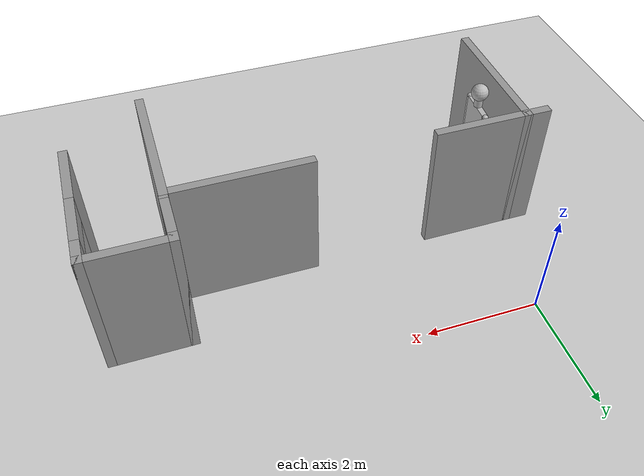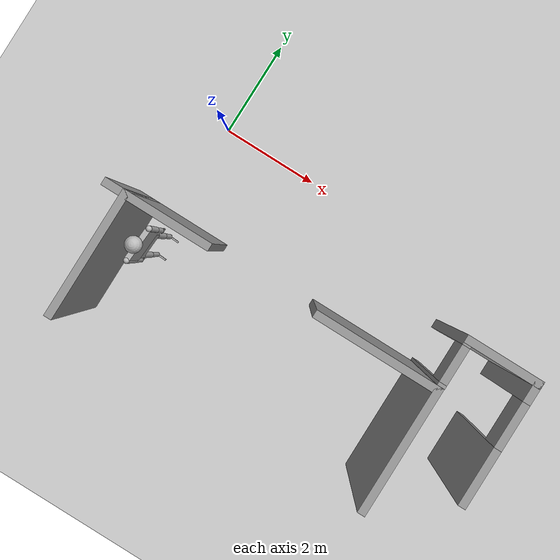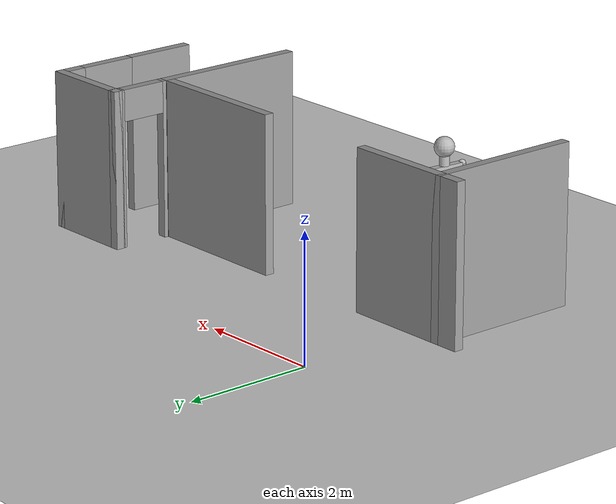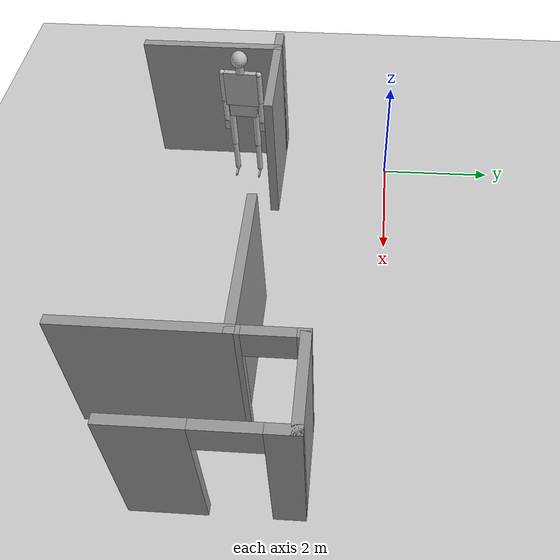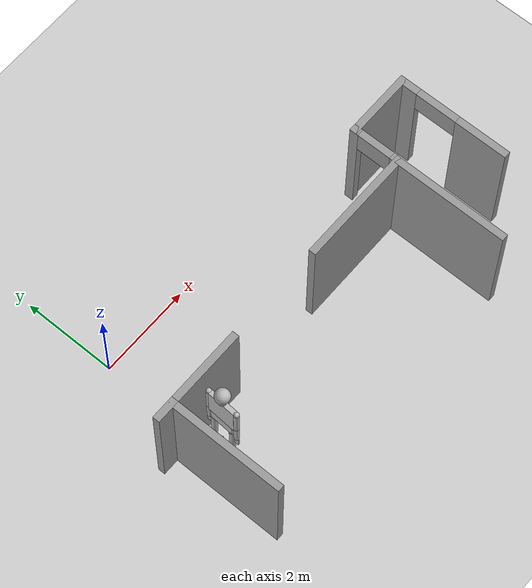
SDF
<sdf version="1.6">
 <world name="default">
  <model name="ground_plane">
   <static>1</static>
   <link name="link">
    <collision name="collision">
     <geometry><plane><normal>0 0 1</normal><size>100 100</size></plane></geometry>
     <surface><friction><ode><mu>100</mu><mu2>50</mu2></ode></friction></surface>
    </collision>
    <visual name="visual">
     <cast_shadows>0</cast_shadows>
     <geometry><plane><normal>0 0 1</normal><size>100 100</size></plane></geometry>
     <material>
      <script><uri>file://media/materials/scripts/gazebo.material</uri><name>Gazebo/Grey</name></script>
     </material>
    </visual>
   </link>
  </model>
  <model name="cma_parede_t">
   <pose>0.159955 -3.24016 0 0 -0 0</pose>
   <link name="Wall_15">
    <collision name="Wall_15_Collision">
     <geometry><box><size>2.5 0.15 2.5</size></box></geometry>
     <pose>0 0 1.25 0 -0 0</pose>
    </collision>
    <visual name="Wall_15_Visual">
     <pose>0 0 1.25 0 -0 0</pose>
     <geometry><box><size>2.5 0.15 2.5</size></box></geometry>
     <material>
      <script><uri>file://media/materials/scripts/gazebo.material</uri><name>Gazebo/Grey</name></script>
      <ambient>1 1 1 1</ambient>
     </material>
    </visual>
    <pose>-0.625 0 0 0 -0 1.5708</pose>
   </link>
   <link name="Wall_16">
    <collision name="Wall_16_Collision">
     <geometry><box><size>0.5 0.15 2.5</size></box></geometry>
     <pose>0 0 1.25 0 -0 0</pose>
    </collision>
    <visual name="Wall_16_Visual">
     <pose>0 0 1.25 0 -0 0</pose>
     <geometry><box><size>0.5 0.15 2.5</size></box></geometry>
     <material>
      <script><uri>file://media/materials/scripts/gazebo.material</uri><name>Gazebo/Grey</name></script>
      <ambient>1 1 1 1</ambient>
     </material>
    </visual>
    <pose>-0.8 1.175 0 0 -0 3.14159</pose>
   </link>
   <link name="Wall_18">
    <collision name="Wall_18_Collision">
     <geometry><box><size>1.75 0.15 2.5</size></box></geometry>
     <pose>0 0 1.25 0 -0 0</pose>
    </collision>
    <visual name="Wall_18_Visual">
     <pose>0 0 1.25 0 -0 0</pose>
     <geometry><box><size>1.75 0.15 2.5</size></box></geometry>
     <material>
      <script><uri>file://media/materials/scripts/gazebo.material</uri><name>Gazebo/Grey</name></script>
      <ambient>1 1 1 1</ambient>
     </material>
    </visual>
    <pose>0.175 1.175 0 0 -0 0</pose>
   </link>
   <static>1</static>
  </model>
  <model name="cma_L2">
   <pose>4.51683 -3.24587 0 0 -0 0</pose>
   <link name="Wall_10">
    <collision name="Wall_10_Collision">
     <geometry><box><size>2.5 0.15 2.5</size></box></geometry>
     <pose>0 0 1.25 0 -0 0</pose>
    </collision>
    <visual name="Wall_10_Visual">
     <pose>0 0 1.25 0 -0 0</pose>
     <geometry><box><size>2.5 0.15 2.5</size></box></geometry>
     <material>
      <script><uri>file://media/materials/scripts/gazebo.material</uri><name>Gazebo/Grey</name></script>
      <ambient>1 1 1 1</ambient>
     </material>
    </visual>
    <pose>1.175 0 0 0 0 -1.5708</pose>
   </link>
   <link name="Wall_9">
    <collision name="Wall_9_Collision">
     <geometry><box><size>2.5 0.15 2.5</size></box></geometry>
     <pose>0 0 1.25 0 -0 0</pose>
    </collision>
    <visual name="Wall_9_Visual">
     <pose>0 0 1.25 0 -0 0</pose>
     <geometry><box><size>2.5 0.15 2.5</size></box></geometry>
     <material>
      <script><uri>file://media/materials/scripts/gazebo.material</uri><name>Gazebo/Grey</name></script>
      <ambient>1 1 1 1</ambient>
     </material>
    </visual>
    <pose>0 1.175 0 0 -0 0</pose>
   </link>
   <static>1</static>
  </model>
  <model name="cma_L3">
   <pose>6.37221 -2.26022 0 0 -0 0</pose>
   <link name="Wall_12">
    <pose>-0.675 0.75 0 0 -0 1.5708</pose>
    <visual name="Wall_12_Visual_0">
     <pose>-0.46 0 1.25 0 -0 0</pose>
     <geometry><box><size>0.08 0.15 2.5</size></box></geometry>
     <material>
      <script><uri>file://media/materials/scripts/gazebo.material</uri><name>Gazebo/Grey</name></script>
      <ambient>1 1 1 1</ambient>
     </material>
    </visual>
    <collision name="Wall_12_Collision_0">
     <geometry><box><size>0.08 0.15 2.5</size></box></geometry>
     <pose>-0.46 0 1.25 0 -0 0</pose>
    </collision>
    <visual name="Wall_12_Visual_1">
     <pose>0.405 0 1.25 0 -0 0</pose>
     <geometry><box><size>0.19 0.15 2.5</size></box></geometry>
     <material>
      <script><uri>file://media/materials/scripts/gazebo.material</uri><name>Gazebo/Grey</name></script>
      <ambient>1 1 1 1</ambient>
     </material>
    </visual>
    <collision name="Wall_12_Collision_1">
     <geometry><box><size>0.19 0.15 2.5</size></box></geometry>
     <pose>0.405 0 1.25 0 -0 0</pose>
    </collision>
    <visual name="Wall_12_Visual_2">
     <pose>-0.055 0 2.25 0 -0 0</pose>
     <geometry><box><size>0.73 0.15 0.5</size></box></geometry>
     <material>
      <script><uri>file://media/materials/scripts/gazebo.material</uri><name>Gazebo/Grey</name></script>
      <ambient>1 1 1 1</ambient>
     </material>
    </visual>
    <collision name="Wall_12_Collision_2">
     <geometry><box><size>0.73 0.15 0.5</size></box></geometry>
     <pose>-0.055 0 2.25 0 -0 0</pose>
    </collision>
   </link>
   <link name="Wall_13">
    <collision name="Wall_13_Collision">
     <geometry><box><size>1.5 0.15 2.5</size></box></geometry>
     <pose>0 0 1.25 0 -0 0</pose>
    </collision>
    <visual name="Wall_13_Visual">
     <pose>0 0 1.25 0 -0 0</pose>
     <geometry><box><size>1.5 0.15 2.5</size></box></geometry>
     <material>
      <script><uri>file://media/materials/scripts/gazebo.material</uri><name>Gazebo/Grey</name></script>
      <ambient>1 1 1 1</ambient>
     </material>
    </visual>
    <pose>0 1.175 0 0 -0 0</pose>
   </link>
   <link name="Wall_14">
    <pose>0.675 0 0 0 0 -1.5708</pose>
    <visual name="Wall_14_Visual_0">
     <pose>-1.0175 0 1.25 0 -0 0</pose>
     <geometry><box><size>0.465 0.15 2.5</size></box></geometry>
     <material>
      <script><uri>file://media/materials/scripts/gazebo.material</uri><name>Gazebo/Grey</name></script>
      <ambient>1 1 1 1</ambient>
     </material>
    </visual>
    <collision name="Wall_14_Collision_0">
     <geometry><box><size>0.465 0.15 2.5</size></box></geometry>
     <pose>-1.0175 0 1.25 0 -0 0</pose>
    </collision>
    <visual name="Wall_14_Visual_1">
     <pose>0.6825 0 1.25 0 -0 0</pose>
     <geometry><box><size>1.135 0.15 2.5</size></box></geometry>
     <material>
      <script><uri>file://media/materials/scripts/gazebo.material</uri><name>Gazebo/Grey</name></script>
      <ambient>1 1 1 1</ambient>
     </material>
    </visual>
    <collision name="Wall_14_Collision_1">
     <geometry><box><size>1.135 0.15 2.5</size></box></geometry>
     <pose>0.6825 0 1.25 0 -0 0</pose>
    </collision>
    <visual name="Wall_14_Visual_2">
     <pose>-0.335 0 2.25 0 -0 0</pose>
     <geometry><box><size>0.9 0.15 0.5</size></box></geometry>
     <material>
      <script><uri>file://media/materials/scripts/gazebo.material</uri><name>Gazebo/Grey</name></script>
      <ambient>1 1 1 1</ambient>
     </material>
    </visual>
    <collision name="Wall_14_Collision_2">
     <geometry><box><size>0.9 0.15 0.5</size></box></geometry>
     <pose>-0.335 0 2.25 0 -0 0</pose>
    </collision>
   </link>
   <static>1</static>
  </model>
  <model name="ragdoll">
   <pose>0.125636 -2.6822 1.39993 5e-05 0.003649 -0.05673</pose>
   <link name="hip">
    <inertial>
     <inertia><ixx>0.1</ixx><ixy>0</ixy><ixz>0</ixz><iyy>0.1</iyy><iyz>0</iyz><izz>0.1</izz></inertia>
     <mass>10</mass>
    </inertial>
    <collision name="hip_geom">
     <pose>0 0 0.125 0 -0 0</pose>
     <geometry><box><size>0.1 0.5 0.25</size></box></geometry>
     <surface>
      <friction><ode><mu>-1</mu><mu2>-1</mu2><fdir1>0 0 0</fdir1><slip1>0</slip1><slip2>0</slip2></ode></friction>
      <bounce><restitution_coefficient>0</restitution_coefficient><threshold>100000</threshold></bounce>
      <contact>
       <ode>
        <soft_cfm>0</soft_cfm>
        <soft_erp>0.2</soft_erp>
        <kp>1e+12</kp>
        <kd>1</kd>
        <max_vel>0</max_vel>
        <min_depth>0.001</min_depth>
       </ode>
      </contact>
     </surface>
    </collision>
    <visual name="hip_geom_visual">
     <pose>0 0 0.125 0 -0 0</pose>
     <geometry><box><size>0.1 0.5 0.25</size></box></geometry>
    </visual>
    <gravity>0</gravity>
   </link>
   <link name="l_thigh_pan">
    <pose>0 0.22 0 0 -0 0</pose>
    <inertial>
     <inertia><ixx>0.01</ixx><ixy>0</ixy><ixz>0</ixz><iyy>0.01</iyy><iyz>0</iyz><izz>0.01</izz></inertia>
     <mass>1</mass>
    </inertial>
    <collision name="l_thigh_pan_geom">
     <pose>0 0 -0.03 0 -0 0</pose>
     <geometry><sphere><radius>0.06</radius></sphere></geometry>
     <surface>
      <friction><ode><mu>-1</mu><mu2>-1</mu2><fdir1>0 0 0</fdir1><slip1>0</slip1><slip2>0</slip2></ode></friction>
      <bounce><restitution_coefficient>0</restitution_coefficient><threshold>100000</threshold></bounce>
      <contact>
       <ode>
        <soft_cfm>0</soft_cfm>
        <soft_erp>0.2</soft_erp>
        <kp>1e+12</kp>
        <kd>1</kd>
        <max_vel>0</max_vel>
        <min_depth>0.001</min_depth>
       </ode>
      </contact>
     </surface>
    </collision>
    <visual name="l_thigh_pan_geom_visual">
     <pose>0 0 -0.03 0 -0 0</pose>
     <geometry><sphere><radius>0.06</radius></sphere></geometry>
    </visual>
    <gravity>0</gravity>
   </link>
   <link name="l_thigh_lift">
    <pose>0 0.22 0 0 -0 0</pose>
    <inertial>
     <inertia><ixx>0.05</ixx><ixy>0</ixy><ixz>0</ixz><iyy>0.05</iyy><iyz>0</iyz><izz>0.05</izz></inertia>
     <mass>5</mass>
    </inertial>
    <collision name="l_thigh_lift_geom">
     <pose>0 0 -0.35 0 -0 0</pose>
     <geometry><cylinder><radius>0.06</radius><length>0.7</length></cylinder></geometry>
     <surface>
      <friction><ode><mu>-1</mu><mu2>-1</mu2><fdir1>0 0 0</fdir1><slip1>0</slip1><slip2>0</slip2></ode></friction>
      <bounce><restitution_coefficient>0</restitution_coefficient><threshold>100000</threshold></bounce>
      <contact>
       <ode>
        <soft_cfm>0</soft_cfm>
        <soft_erp>0.2</soft_erp>
        <kp>1e+12</kp>
        <kd>1</kd>
        <max_vel>0</max_vel>
        <min_depth>0.001</min_depth>
       </ode>
      </contact>
     </surface>
    </collision>
    <visual name="l_thigh_lift_geom_visual">
     <pose>0 0 -0.35 0 -0 0</pose>
     <geometry><cylinder><radius>0.06</radius><length>0.7</length></cylinder></geometry>
    </visual>
    <gravity>0</gravity>
   </link>
   <link name="l_calf">
    <pose>0 0.22 -0.7 0 -0 0</pose>
    <inertial>
     <inertia><ixx>0.02</ixx><ixy>0</ixy><ixz>0</ixz><iyy>0.02</iyy><iyz>0</iyz><izz>0.02</izz></inertia>
     <mass>2</mass>
    </inertial>
    <collision name="l_calf_geom">
     <pose>0 0 -0.3 0 -0 0</pose>
     <geometry><cylinder><radius>0.05</radius><length>0.6</length></cylinder></geometry>
     <surface>
      <friction><ode><mu>-1</mu><mu2>-1</mu2><fdir1>0 0 0</fdir1><slip1>0</slip1><slip2>0</slip2></ode></friction>
      <bounce><restitution_coefficient>0</restitution_coefficient><threshold>100000</threshold></bounce>
      <contact>
       <ode>
        <soft_cfm>0</soft_cfm>
        <soft_erp>0.2</soft_erp>
        <kp>1e+12</kp>
        <kd>1</kd>
        <max_vel>0</max_vel>
        <min_depth>0.001</min_depth>
       </ode>
      </contact>
     </surface>
    </collision>
    <visual name="l_calf_geom_visual">
     <pose>0 0 -0.3 0 -0 0</pose>
     <geometry><cylinder><radius>0.05</radius><length>0.6</length></cylinder></geometry>
    </visual>
    <gravity>0</gravity>
   </link>
   <link name="l_ankle">
    <pose>0 0.22 -1.325 0 -0 0</pose>
    <inertial>
     <inertia><ixx>0.01</ixx><ixy>0</ixy><ixz>0</ixz><iyy>0.01</iyy><iyz>0</iyz><izz>0.01</izz></inertia>
     <mass>1</mass>
    </inertial>
    <collision name="l_ankle_geom">
     <geometry><sphere><radius>0.05</radius></sphere></geometry>
     <surface>
      <friction><ode><mu>-1</mu><mu2>-1</mu2><fdir1>0 0 0</fdir1><slip1>0</slip1><slip2>0</slip2></ode></friction>
      <bounce><restitution_coefficient>0</restitution_coefficient><threshold>100000</threshold></bounce>
      <contact>
       <ode>
        <soft_cfm>0</soft_cfm>
        <soft_erp>0.2</soft_erp>
        <kp>1e+12</kp>
        <kd>1</kd>
        <max_vel>0</max_vel>
        <min_depth>0.001</min_depth>
       </ode>
      </contact>
     </surface>
    </collision>
    <visual name="l_ankle_geom_visual"><geometry><sphere><radius>0.05</radius></sphere></geometry></visual>
    <gravity>0</gravity>
   </link>
   <link name="l_foot">
    <pose>0 0.22 -1.35 0 -0 0</pose>
    <inertial>
     <pose>0.1 0 0 0 -0 0</pose>
     <inertia><ixx>0.01</ixx><ixy>0</ixy><ixz>0</ixz><iyy>0.01</iyy><iyz>0</iyz><izz>0.01</izz></inertia>
     <mass>1</mass>
    </inertial>
    <collision name="l_foot_geom">
     <pose>0.1 0 -0.025 0 -0 0</pose>
     <geometry><box><size>0.2 0.03 0.05</size></box></geometry>
     <surface>
      <friction><ode><mu>-1</mu><mu2>-1</mu2><fdir1>0 0 0</fdir1><slip1>0</slip1><slip2>0</slip2></ode></friction>
      <bounce><restitution_coefficient>0</restitution_coefficient><threshold>100000</threshold></bounce>
      <contact>
       <ode>
        <soft_cfm>0</soft_cfm>
        <soft_erp>0.2</soft_erp>
        <kp>1e+12</kp>
        <kd>1</kd>
        <max_vel>0</max_vel>
        <min_depth>0.001</min_depth>
       </ode>
      </contact>
     </surface>
    </collision>
    <visual name="l_foot_geom_visual">
     <pose>0.1 0 -0.025 0 -0 0</pose>
     <geometry><box><size>0.2 0.03 0.05</size></box></geometry>
    </visual>
   </link>
   <link name="r_thigh_pan">
    <pose>0 -0.22 0 0 -0 0</pose>
    <inertial>
     <inertia><ixx>0.01</ixx><ixy>0</ixy><ixz>0</ixz><iyy>0.01</iyy><iyz>0</iyz><izz>0.01</izz></inertia>
     <mass>1</mass>
    </inertial>
    <collision name="r_thigh_pan_geom">
     <pose>0 0 -0.03 0 -0 0</pose>
     <geometry><sphere><radius>0.06</radius></sphere></geometry>
     <surface>
      <friction><ode><mu>-1</mu><mu2>-1</mu2><fdir1>0 0 0</fdir1><slip1>0</slip1><slip2>0</slip2></ode></friction>
      <bounce><restitution_coefficient>0</restitution_coefficient><threshold>100000</threshold></bounce>
      <contact>
       <ode>
        <soft_cfm>0</soft_cfm>
        <soft_erp>0.2</soft_erp>
        <kp>1e+12</kp>
        <kd>1</kd>
        <max_vel>0</max_vel>
        <min_depth>0.001</min_depth>
       </ode>
      </contact>
     </surface>
    </collision>
    <visual name="r_thigh_pan_geom_visual">
     <pose>0 0 -0.03 0 -0 0</pose>
     <geometry><sphere><radius>0.06</radius></sphere></geometry>
    </visual>
    <gravity>0</gravity>
   </link>
   <link name="r_thigh_lift">
    <pose>0 -0.22 0 0 -0 0</pose>
    <inertial>
     <inertia><ixx>0.05</ixx><ixy>0</ixy><ixz>0</ixz><iyy>0.05</iyy><iyz>0</iyz><izz>0.05</izz></inertia>
     <mass>5</mass>
    </inertial>
    <collision name="r_thigh_lift_geom">
     <pose>0 0 -0.35 0 -0 0</pose>
     <geometry><cylinder><radius>0.06</radius><length>0.7</length></cylinder></geometry>
     <surface>
      <friction><ode><mu>-1</mu><mu2>-1</mu2><fdir1>0 0 0</fdir1><slip1>0</slip1><slip2>0</slip2></ode></friction>
      <bounce><restitution_coefficient>0</restitution_coefficient><threshold>100000</threshold></bounce>
      <contact>
       <ode>
        <soft_cfm>0</soft_cfm>
        <soft_erp>0.2</soft_erp>
        <kp>1e+12</kp>
        <kd>1</kd>
        <max_vel>0</max_vel>
        <min_depth>0.001</min_depth>
       </ode>
      </contact>
     </surface>
    </collision>
    <visual name="r_thigh_lift_geom_visual">
     <pose>0 0 -0.35 0 -0 0</pose>
     <geometry><cylinder><radius>0.06</radius><length>0.7</length></cylinder></geometry>
    </visual>
    <gravity>0</gravity>
   </link>
   <link name="r_calf">
    <pose>0 -0.22 -0.7 0 -0 0</pose>
    <inertial>
     <inertia><ixx>0.02</ixx><ixy>0</ixy><ixz>0</ixz><iyy>0.02</iyy><iyz>0</iyz><izz>0.02</izz></inertia>
     <mass>2</mass>
    </inertial>
    <collision name="r_calf_geom">
     <pose>0 0 -0.3 0 -0 0</pose>
     <geometry><cylinder><radius>0.05</radius><length>0.6</length></cylinder></geometry>
     <surface>
      <friction><ode><mu>-1</mu><mu2>-1</mu2><fdir1>0 0 0</fdir1><slip1>0</slip1><slip2>0</slip2></ode></friction>
      <bounce><restitution_coefficient>0</restitution_coefficient><threshold>100000</threshold></bounce>
      <contact>
       <ode>
        <soft_cfm>0</soft_cfm>
        <soft_erp>0.2</soft_erp>
        <kp>1e+12</kp>
        <kd>1</kd>
        <max_vel>0</max_vel>
        <min_depth>0.001</min_depth>
       </ode>
      </contact>
     </surface>
    </collision>
    <visual name="r_calf_geom_visual">
     <pose>0 0 -0.3 0 -0 0</pose>
     <geometry><cylinder><radius>0.05</radius><length>0.6</length></cylinder></geometry>
    </visual>
    <gravity>0</gravity>
   </link>
   <link name="r_ankle">
    <pose>0 -0.22 -1.325 0 -0 0</pose>
    <inertial>
     <inertia><ixx>0.01</ixx><ixy>0</ixy><ixz>0</ixz><iyy>0.01</iyy><iyz>0</iyz><izz>0.01</izz></inertia>
     <mass>1</mass>
    </inertial>
    <collision name="r_ankle_geom">
     <geometry><sphere><radius>0.05</radius></sphere></geometry>
     <surface>
      <friction><ode><mu>-1</mu><mu2>-1</mu2><fdir1>0 0 0</fdir1><slip1>0</slip1><slip2>0</slip2></ode></friction>
      <bounce><restitution_coefficient>0</restitution_coefficient><threshold>100000</threshold></bounce>
      <contact>
       <ode>
        <soft_cfm>0</soft_cfm>
        <soft_erp>0.2</soft_erp>
        <kp>1e+12</kp>
        <kd>1</kd>
        <max_vel>0</max_vel>
        <min_depth>0.001</min_depth>
       </ode>
      </contact>
     </surface>
    </collision>
    <visual name="r_ankle_geom_visual"><geometry><sphere><radius>0.05</radius></sphere></geometry></visual>
    <gravity>0</gravity>
   </link>
   <link name="r_foot">
    <pose>0 -0.22 -1.35 0 -0 0</pose>
    <inertial>
     <pose>0.1 0 0 0 -0 0</pose>
     <inertia><ixx>0.01</ixx><ixy>0</ixy><ixz>0</ixz><iyy>0.01</iyy><iyz>0</iyz><izz>0.01</izz></inertia>
     <mass>1</mass>
    </inertial>
    <collision name="r_foot_geom">
     <pose>0.1 0 -0.025 0 -0 0</pose>
     <geometry><box><size>0.2 0.03 0.05</size></box></geometry>
     <surface>
      <friction><ode><mu>-1</mu><mu2>-1</mu2><fdir1>0 0 0</fdir1><slip1>0</slip1><slip2>0</slip2></ode></friction>
      <bounce><restitution_coefficient>0</restitution_coefficient><threshold>100000</threshold></bounce>
      <contact>
       <ode>
        <soft_cfm>0</soft_cfm>
        <soft_erp>0.2</soft_erp>
        <kp>1e+12</kp>
        <kd>1</kd>
        <max_vel>0</max_vel>
        <min_depth>0.001</min_depth>
       </ode>
      </contact>
     </surface>
    </collision>
    <visual name="r_foot_geom_visual">
     <pose>0.1 0 -0.025 0 -0 0</pose>
     <geometry><box><size>0.2 0.03 0.05</size></box></geometry>
    </visual>
   </link>
   <link name="torso">
    <pose>0 0 0.25 0 -0 0</pose>
    <inertial>
     <inertia><ixx>0.3</ixx><ixy>0</ixy><ixz>0</ixz><iyy>0.3</iyy><iyz>0</iyz><izz>0.3</izz></inertia>
     <mass>30</mass>
    </inertial>
    <collision name="torso_geom">
     <pose>0 0 0.35 0 -0 0</pose>
     <geometry><box><size>0.1 0.6 0.7</size></box></geometry>
     <surface>
      <friction><ode><mu>-1</mu><mu2>-1</mu2><fdir1>0 0 0</fdir1><slip1>0</slip1><slip2>0</slip2></ode></friction>
      <bounce><restitution_coefficient>0</restitution_coefficient><threshold>100000</threshold></bounce>
      <contact>
       <ode>
        <soft_cfm>0</soft_cfm>
        <soft_erp>0.2</soft_erp>
        <kp>1e+12</kp>
        <kd>1</kd>
        <max_vel>0</max_vel>
        <min_depth>0.001</min_depth>
       </ode>
      </contact>
     </surface>
    </collision>
    <visual name="torso_geom_visual">
     <pose>0 0 0.35 0 -0 0</pose>
     <geometry><box><size>0.1 0.6 0.7</size></box></geometry>
    </visual>
    <gravity>0</gravity>
   </link>
   <link name="l_shoulder">
    <pose>0 0.3275 0.9225 0 -0 0</pose>
    <inertial>
     <inertia><ixx>0.01</ixx><ixy>0</ixy><ixz>0</ixz><iyy>0.01</iyy><iyz>0</iyz><izz>0.01</izz></inertia>
     <mass>1</mass>
    </inertial>
    <collision name="l_shoulder_geom">
     <geometry><sphere><radius>0.055</radius></sphere></geometry>
     <surface>
      <friction><ode><mu>-1</mu><mu2>-1</mu2><fdir1>0 0 0</fdir1><slip1>0</slip1><slip2>0</slip2></ode></friction>
      <bounce><restitution_coefficient>0</restitution_coefficient><threshold>100000</threshold></bounce>
      <contact>
       <ode>
        <soft_cfm>0</soft_cfm>
        <soft_erp>0.2</soft_erp>
        <kp>1e+12</kp>
        <kd>1</kd>
        <max_vel>0</max_vel>
        <min_depth>0.001</min_depth>
       </ode>
      </contact>
     </surface>
    </collision>
    <visual name="l_shoulder_geom_visual"><geometry><sphere><radius>0.055</radius></sphere></geometry></visual>
    <gravity>0</gravity>
   </link>
   <link name="l_upper_arm">
    <pose>0 0.3275 0.9225 0 -0 0</pose>
    <inertial>
     <inertia><ixx>0.02</ixx><ixy>0</ixy><ixz>0</ixz><iyy>0.02</iyy><iyz>0</iyz><izz>0.02</izz></inertia>
     <mass>2</mass>
    </inertial>
    <collision name="l_upper_arm_geom">
     <pose>0 0 -0.3 0 -0 0</pose>
     <geometry><cylinder><radius>0.055</radius><length>0.6</length></cylinder></geometry>
     <surface>
      <friction><ode><mu>-1</mu><mu2>-1</mu2><fdir1>0 0 0</fdir1><slip1>0</slip1><slip2>0</slip2></ode></friction>
      <bounce><restitution_coefficient>0</restitution_coefficient><threshold>100000</threshold></bounce>
      <contact>
       <ode>
        <soft_cfm>0</soft_cfm>
        <soft_erp>0.2</soft_erp>
        <kp>1e+12</kp>
        <kd>1</kd>
        <max_vel>0</max_vel>
        <min_depth>0.001</min_depth>
       </ode>
      </contact>
     </surface>
    </collision>
    <visual name="l_upper_arm_geom_visual">
     <pose>0 0 -0.3 0 -0 0</pose>
     <geometry><cylinder><radius>0.055</radius><length>0.6</length></cylinder></geometry>
    </visual>
    <gravity>0</gravity>
   </link>
   <link name="l_forearm">
    <pose>0 0.3275 0.3225 0 -0 0</pose>
    <inertial>
     <inertia><ixx>0.01</ixx><ixy>0</ixy><ixz>0</ixz><iyy>0.01</iyy><iyz>0</iyz><izz>0.01</izz></inertia>
     <mass>1</mass>
    </inertial>
    <collision name="l_forearm_geom">
     <pose>0 0 -0.225 0 -0 0</pose>
     <geometry><cylinder><radius>0.05</radius><length>0.45</length></cylinder></geometry>
     <surface>
      <friction><ode><mu>-1</mu><mu2>-1</mu2><fdir1>0 0 0</fdir1><slip1>0</slip1><slip2>0</slip2></ode></friction>
      <bounce><restitution_coefficient>0</restitution_coefficient><threshold>100000</threshold></bounce>
      <contact>
       <ode>
        <soft_cfm>0</soft_cfm>
        <soft_erp>0.2</soft_erp>
        <kp>1e+12</kp>
        <kd>1</kd>
        <max_vel>0</max_vel>
        <min_depth>0.001</min_depth>
       </ode>
      </contact>
     </surface>
    </collision>
    <visual name="l_forearm_geom_visual">
     <pose>0 0 -0.225 0 -0 0</pose>
     <geometry><cylinder><radius>0.05</radius><length>0.45</length></cylinder></geometry>
    </visual>
    <gravity>0</gravity>
   </link>
   <link name="l_wrist">
    <pose>0 0.3275 -0.1425 0 -0 0</pose>
    <inertial>
     <inertia><ixx>0.01</ixx><ixy>0</ixy><ixz>0</ixz><iyy>0.01</iyy><iyz>0</iyz><izz>0.01</izz></inertia>
     <mass>1</mass>
    </inertial>
    <collision name="l_wrist_geom">
     <geometry><sphere><radius>0.03</radius></sphere></geometry>
     <surface>
      <friction><ode><mu>-1</mu><mu2>-1</mu2><fdir1>0 0 0</fdir1><slip1>0</slip1><slip2>0</slip2></ode></friction>
      <bounce><restitution_coefficient>0</restitution_coefficient><threshold>100000</threshold></bounce>
      <contact>
       <ode>
        <soft_cfm>0</soft_cfm>
        <soft_erp>0.2</soft_erp>
        <kp>1e+12</kp>
        <kd>1</kd>
        <max_vel>0</max_vel>
        <min_depth>0.001</min_depth>
       </ode>
      </contact>
     </surface>
    </collision>
    <visual name="l_wrist_geom_visual"><geometry><sphere><radius>0.03</radius></sphere></geometry></visual>
    <gravity>0</gravity>
   </link>
   <link name="l_hand">
    <pose>0 0.3275 -0.1575 0 -0 0</pose>
    <inertial>
     <inertia><ixx>0.01</ixx><ixy>0</ixy><ixz>0</ixz><iyy>0.01</iyy><iyz>0</iyz><izz>0.01</izz></inertia>
     <mass>1</mass>
    </inertial>
    <collision name="l_hand_geom">
     <pose>0 0 -0.1 0 -0 0</pose>
     <geometry><box><size>0.03 0.1 0.2</size></box></geometry>
     <surface>
      <friction><ode><mu>-1</mu><mu2>-1</mu2><fdir1>0 0 0</fdir1><slip1>0</slip1><slip2>0</slip2></ode></friction>
      <bounce><restitution_coefficient>0</restitution_coefficient><threshold>100000</threshold></bounce>
      <contact>
       <ode>
        <soft_cfm>0</soft_cfm>
        <soft_erp>0.2</soft_erp>
        <kp>1e+12</kp>
        <kd>1</kd>
        <max_vel>0</max_vel>
        <min_depth>0.001</min_depth>
       </ode>
      </contact>
     </surface>
    </collision>
    <visual name="l_hand_geom_visual">
     <pose>0 0 -0.1 0 -0 0</pose>
     <geometry><box><size>0.03 0.1 0.2</size></box></geometry>
    </visual>
    <gravity>0</gravity>
   </link>
   <link name="neck">
    <pose>0 0 0.95 0 -0 0</pose>
    <inertial>
     <inertia><ixx>0.01</ixx><ixy>0</ixy><ixz>0</ixz><iyy>0.01</iyy><iyz>0</iyz><izz>0.01</izz></inertia>
     <mass>1</mass>
    </inertial>
    <collision name="neck_geom">
     <pose>0 0 0.1 0 -0 0</pose>
     <geometry><cylinder><radius>0.075</radius><length>0.2</length></cylinder></geometry>
     <surface>
      <friction><ode><mu>-1</mu><mu2>-1</mu2><fdir1>0 0 0</fdir1><slip1>0</slip1><slip2>0</slip2></ode></friction>
      <bounce><restitution_coefficient>0</restitution_coefficient><threshold>100000</threshold></bounce>
      <contact>
       <ode>
        <soft_cfm>0</soft_cfm>
        <soft_erp>0.2</soft_erp>
        <kp>1e+12</kp>
        <kd>1</kd>
        <max_vel>0</max_vel>
        <min_depth>0.001</min_depth>
       </ode>
      </contact>
     </surface>
    </collision>
    <visual name="neck_geom_visual">
     <pose>0 0 0.1 0 -0 0</pose>
     <geometry><cylinder><radius>0.075</radius><length>0.2</length></cylinder></geometry>
    </visual>
    <gravity>0</gravity>
   </link>
   <link name="head">
    <pose>0 0 1.225 0 -0 0</pose>
    <inertial>
     <inertia><ixx>0.1</ixx><ixy>0</ixy><ixz>0</ixz><iyy>0.1</iyy><iyz>0</iyz><izz>0.1</izz></inertia>
     <mass>10</mass>
    </inertial>
    <collision name="head_geom">
     <geometry><sphere><radius>0.15</radius></sphere></geometry>
     <surface>
      <friction><ode><mu>-1</mu><mu2>-1</mu2><fdir1>0 0 0</fdir1><slip1>0</slip1><slip2>0</slip2></ode></friction>
      <bounce><restitution_coefficient>0</restitution_coefficient><threshold>100000</threshold></bounce>
      <contact>
       <ode>
        <soft_cfm>0</soft_cfm>
        <soft_erp>0.2</soft_erp>
        <kp>1e+12</kp>
        <kd>1</kd>
        <max_vel>0</max_vel>
        <min_depth>0.001</min_depth>
       </ode>
      </contact>
     </surface>
    </collision>
    <visual name="head_geom_visual"><geometry><sphere><radius>0.15</radius></sphere></geometry></visual>
    <gravity>0</gravity>
   </link>
   <link name="r_shoulder">
    <pose>0 -0.3275 0.9225 0 -0 0</pose>
    <inertial>
     <inertia><ixx>0.01</ixx><ixy>0</ixy><ixz>0</ixz><iyy>0.01</iyy><iyz>0</iyz><izz>0.01</izz></inertia>
     <mass>1</mass>
    </inertial>
    <collision name="r_shoulder_geom">
     <geometry><sphere><radius>0.055</radius></sphere></geometry>
     <surface>
      <friction><ode><mu>-1</mu><mu2>-1</mu2><fdir1>0 0 0</fdir1><slip1>0</slip1><slip2>0</slip2></ode></friction>
      <bounce><restitution_coefficient>0</restitution_coefficient><threshold>100000</threshold></bounce>
      <contact>
       <ode>
        <soft_cfm>0</soft_cfm>
        <soft_erp>0.2</soft_erp>
        <kp>1e+12</kp>
        <kd>1</kd>
        <max_vel>0</max_vel>
        <min_depth>0.001</min_depth>
       </ode>
      </contact>
     </surface>
    </collision>
    <visual name="r_shoulder_geom_visual"><geometry><sphere><radius>0.055</radius></sphere></geometry></visual>
    <gravity>0</gravity>
   </link>
   <link name="r_upper_arm">
    <pose>0 -0.3275 0.9225 0 -0 0</pose>
    <inertial>
     <inertia><ixx>0.02</ixx><ixy>0</ixy><ixz>0</ixz><iyy>0.02</iyy><iyz>0</iyz><izz>0.02</izz></inertia>
     <mass>2</mass>
    </inertial>
    <collision name="r_upper_arm_geom">
     <pose>0 0 -0.3 0 -0 0</pose>
     <geometry><cylinder><radius>0.055</radius><length>0.6</length></cylinder></geometry>
     <surface>
      <friction><ode><mu>-1</mu><mu2>-1</mu2><fdir1>0 0 0</fdir1><slip1>0</slip1><slip2>0</slip2></ode></friction>
      <bounce><restitution_coefficient>0</restitution_coefficient><threshold>100000</threshold></bounce>
      <contact>
       <ode>
        <soft_cfm>0</soft_cfm>
        <soft_erp>0.2</soft_erp>
        <kp>1e+12</kp>
        <kd>1</kd>
        <max_vel>0</max_vel>
        <min_depth>0.001</min_depth>
       </ode>
      </contact>
     </surface>
    </collision>
    <visual name="r_upper_arm_geom_visual">
     <pose>0 0 -0.3 0 -0 0</pose>
     <geometry><cylinder><radius>0.055</radius><length>0.6</length></cylinder></geometry>
    </visual>
    <gravity>0</gravity>
   </link>
   <link name="r_forearm">
    <pose>0 -0.3275 0.3225 0 -0 0</pose>
    <inertial>
     <inertia><ixx>0.01</ixx><ixy>0</ixy><ixz>0</ixz><iyy>0.01</iyy><iyz>0</iyz><izz>0.01</izz></inertia>
     <mass>1</mass>
    </inertial>
    <collision name="r_forearm_geom">
     <pose>0 0 -0.225 0 -0 0</pose>
     <geometry><cylinder><radius>0.05</radius><length>0.45</length></cylinder></geometry>
     <surface>
      <friction><ode><mu>-1</mu><mu2>-1</mu2><fdir1>0 0 0</fdir1><slip1>0</slip1><slip2>0</slip2></ode></friction>
      <bounce><restitution_coefficient>0</restitution_coefficient><threshold>100000</threshold></bounce>
      <contact>
       <ode>
        <soft_cfm>0</soft_cfm>
        <soft_erp>0.2</soft_erp>
        <kp>1e+12</kp>
        <kd>1</kd>
        <max_vel>0</max_vel>
        <min_depth>0.001</min_depth>
       </ode>
      </contact>
     </surface>
    </collision>
    <visual name="r_forearm_geom_visual">
     <pose>0 0 -0.225 0 -0 0</pose>
     <geometry><cylinder><radius>0.05</radius><length>0.45</length></cylinder></geometry>
    </visual>
    <gravity>0</gravity>
   </link>
   <link name="r_wrist">
    <pose>0 -0.3275 -0.1425 0 -0 0</pose>
    <inertial>
     <inertia><ixx>0.01</ixx><ixy>0</ixy><ixz>0</ixz><iyy>0.01</iyy><iyz>0</iyz><izz>0.01</izz></inertia>
     <mass>1</mass>
    </inertial>
    <collision name="r_wrist_geom">
     <geometry><sphere><radius>0.03</radius></sphere></geometry>
     <surface>
      <friction><ode><mu>-1</mu><mu2>-1</mu2><fdir1>0 0 0</fdir1><slip1>0</slip1><slip2>0</slip2></ode></friction>
      <bounce><restitution_coefficient>0</restitution_coefficient><threshold>100000</threshold></bounce>
      <contact>
       <ode>
        <soft_cfm>0</soft_cfm>
        <soft_erp>0.2</soft_erp>
        <kp>1e+12</kp>
        <kd>1</kd>
        <max_vel>0</max_vel>
        <min_depth>0.001</min_depth>
       </ode>
      </contact>
     </surface>
    </collision>
    <visual name="r_wrist_geom_visual"><geometry><sphere><radius>0.03</radius></sphere></geometry></visual>
    <gravity>0</gravity>
   </link>
   <link name="r_hand">
    <pose>0 -0.3275 -0.1575 0 -0 0</pose>
    <inertial>
     <inertia><ixx>0.01</ixx><ixy>0</ixy><ixz>0</ixz><iyy>0.01</iyy><iyz>0</iyz><izz>0.01</izz></inertia>
     <mass>1</mass>
    </inertial>
    <collision name="r_hand_geom">
     <pose>0 0 -0.1 0 -0 0</pose>
     <geometry><box><size>0.03 0.1 0.2</size></box></geometry>
     <surface>
      <friction><ode><mu>-1</mu><mu2>-1</mu2><fdir1>0 0 0</fdir1><slip1>0</slip1><slip2>0</slip2></ode></friction>
      <bounce><restitution_coefficient>0</restitution_coefficient><threshold>100000</threshold></bounce>
      <contact>
       <ode>
        <soft_cfm>0</soft_cfm>
        <soft_erp>0.2</soft_erp>
        <kp>1e+12</kp>
        <kd>1</kd>
        <max_vel>0</max_vel>
        <min_depth>0.001</min_depth>
       </ode>
      </contact>
     </surface>
    </collision>
    <visual name="r_hand_geom_visual">
     <pose>0 0 -0.1 0 -0 0</pose>
     <geometry><box><size>0.03 0.1 0.2</size></box></geometry>
    </visual>
    <gravity>0</gravity>
   </link>
   <joint name="l_thigh_pan_joint" type="revolute">
    <parent>hip</parent>
    <child>l_thigh_pan</child>
    <axis>
     <dynamics>
      <damping>0</damping>
      <friction>0</friction>
      <spring_reference>0</spring_reference>
      <spring_stiffness>0</spring_stiffness>
     </dynamics>
     <limit><lower>-1.5708</lower><upper>1.5708</upper><effort>0</effort><velocity>0</velocity></limit>
     <xyz>0 0 1</xyz>
     <use_parent_model_frame>1</use_parent_model_frame>
    </axis>
   </joint>
   <joint name="l_thigh_lift_joint" type="revolute">
    <parent>l_thigh_pan</parent>
    <child>l_thigh_lift</child>
    <axis>
     <dynamics>
      <damping>0</damping>
      <friction>0</friction>
      <spring_reference>0</spring_reference>
      <spring_stiffness>0</spring_stiffness>
     </dynamics>
     <limit><lower>-1.5708</lower><upper>1.5708</upper><effort>0</effort><velocity>0</velocity></limit>
     <xyz>0 1 0</xyz>
     <use_parent_model_frame>1</use_parent_model_frame>
    </axis>
   </joint>
   <joint name="l_calf_joint" type="revolute">
    <parent>l_thigh_lift</parent>
    <child>l_calf</child>
    <axis>
     <dynamics>
      <damping>0</damping>
      <friction>0</friction>
      <spring_reference>0</spring_reference>
      <spring_stiffness>0</spring_stiffness>
     </dynamics>
     <limit><lower>-1.5708</lower><upper>1.5708</upper><effort>0</effort><velocity>0</velocity></limit>
     <xyz>0 1 0</xyz>
     <use_parent_model_frame>1</use_parent_model_frame>
    </axis>
   </joint>
   <joint name="l_ankle_joint" type="revolute">
    <parent>l_calf</parent>
    <child>l_ankle</child>
    <axis>
     <dynamics>
      <damping>0</damping>
      <friction>0</friction>
      <spring_reference>0</spring_reference>
      <spring_stiffness>0</spring_stiffness>
     </dynamics>
     <limit><lower>-1.5708</lower><upper>1.5708</upper><effort>0</effort><velocity>0</velocity></limit>
     <xyz>0 1 0</xyz>
     <use_parent_model_frame>1</use_parent_model_frame>
    </axis>
   </joint>
   <joint name="l_foot_joint" type="revolute">
    <parent>l_ankle</parent>
    <child>l_foot</child>
    <axis>
     <dynamics>
      <damping>0</damping>
      <friction>0</friction>
      <spring_reference>0</spring_reference>
      <spring_stiffness>0</spring_stiffness>
     </dynamics>
     <limit><lower>-1.5708</lower><upper>1.5708</upper><effort>0</effort><velocity>0</velocity></limit>
     <xyz>1 0 0</xyz>
     <use_parent_model_frame>1</use_parent_model_frame>
    </axis>
   </joint>
   <joint name="r_thigh_pan_joint" type="revolute">
    <parent>hip</parent>
    <child>r_thigh_pan</child>
    <axis>
     <dynamics>
      <damping>0</damping>
      <friction>0</friction>
      <spring_reference>0</spring_reference>
      <spring_stiffness>0</spring_stiffness>
     </dynamics>
     <limit><lower>-1.5708</lower><upper>1.5708</upper><effort>0</effort><velocity>0</velocity></limit>
     <xyz>0 0 1</xyz>
     <use_parent_model_frame>1</use_parent_model_frame>
    </axis>
   </joint>
   <joint name="r_thigh_lift_joint" type="revolute">
    <parent>r_thigh_pan</parent>
    <child>r_thigh_lift</child>
    <axis>
     <dynamics>
      <damping>0</damping>
      <friction>0</friction>
      <spring_reference>0</spring_reference>
      <spring_stiffness>0</spring_stiffness>
     </dynamics>
     <limit><lower>-1.5708</lower><upper>1.5708</upper><effort>0</effort><velocity>0</velocity></limit>
     <xyz>0 1 0</xyz>
     <use_parent_model_frame>1</use_parent_model_frame>
    </axis>
   </joint>
   <joint name="r_calf_joint" type="revolute">
    <parent>r_thigh_lift</parent>
    <child>r_calf</child>
    <axis>
     <dynamics>
      <damping>0</damping>
      <friction>0</friction>
      <spring_reference>0</spring_reference>
      <spring_stiffness>0</spring_stiffness>
     </dynamics>
     <limit><lower>-1.5708</lower><upper>1.5708</upper><effort>0</effort><velocity>0</velocity></limit>
     <xyz>0 1 0</xyz>
     <use_parent_model_frame>1</use_parent_model_frame>
    </axis>
   </joint>
   <joint name="r_ankle_joint" type="revolute">
    <parent>r_calf</parent>
    <child>r_ankle</child>
    <axis>
     <dynamics>
      <damping>0</damping>
      <friction>0</friction>
      <spring_reference>0</spring_reference>
      <spring_stiffness>0</spring_stiffness>
     </dynamics>
     <limit><lower>-1.5708</lower><upper>1.5708</upper><effort>0</effort><velocity>0</velocity></limit>
     <xyz>0 1 0</xyz>
     <use_parent_model_frame>1</use_parent_model_frame>
    </axis>
   </joint>
   <joint name="r_foot_joint" type="revolute">
    <parent>r_ankle</parent>
    <child>r_foot</child>
    <axis>
     <dynamics>
      <damping>0</damping>
      <friction>0</friction>
      <spring_reference>0</spring_reference>
      <spring_stiffness>0</spring_stiffness>
     </dynamics>
     <limit><lower>-1.5708</lower><upper>1.5708</upper><effort>0</effort><velocity>0</velocity></limit>
     <xyz>1 0 0</xyz>
     <use_parent_model_frame>1</use_parent_model_frame>
    </axis>
   </joint>
   <joint name="torso_joint" type="revolute">
    <parent>hip</parent>
    <child>torso</child>
    <axis>
     <dynamics>
      <damping>0</damping>
      <friction>0</friction>
      <spring_reference>0</spring_reference>
      <spring_stiffness>0</spring_stiffness>
     </dynamics>
     <limit><lower>-1.5708</lower><upper>1.5708</upper><effort>0</effort><velocity>0</velocity></limit>
     <xyz>0 1 0</xyz>
     <use_parent_model_frame>1</use_parent_model_frame>
    </axis>
   </joint>
   <joint name="l_shoulder_joint" type="revolute">
    <parent>torso</parent>
    <child>l_shoulder</child>
    <axis>
     <dynamics>
      <damping>0</damping>
      <friction>0</friction>
      <spring_reference>0</spring_reference>
      <spring_stiffness>0</spring_stiffness>
     </dynamics>
     <limit><lower>-1.5708</lower><upper>1.5708</upper><effort>0</effort><velocity>0</velocity></limit>
     <xyz>1 0 0</xyz>
     <use_parent_model_frame>1</use_parent_model_frame>
    </axis>
   </joint>
   <joint name="l_upper_arm_joint" type="revolute">
    <parent>l_shoulder</parent>
    <child>l_upper_arm</child>
    <axis>
     <dynamics>
      <damping>0</damping>
      <friction>0</friction>
      <spring_reference>0</spring_reference>
      <spring_stiffness>0</spring_stiffness>
     </dynamics>
     <limit><lower>-1.5708</lower><upper>1.5708</upper><effort>0</effort><velocity>0</velocity></limit>
     <xyz>0 1 0</xyz>
     <use_parent_model_frame>1</use_parent_model_frame>
    </axis>
   </joint>
   <joint name="l_forearm_joint" type="revolute">
    <parent>l_upper_arm</parent>
    <child>l_forearm</child>
    <axis>
     <dynamics>
      <damping>0</damping>
      <friction>0</friction>
      <spring_reference>0</spring_reference>
      <spring_stiffness>0</spring_stiffness>
     </dynamics>
     <limit><lower>-1.5708</lower><upper>1.5708</upper><effort>0</effort><velocity>0</velocity></limit>
     <xyz>0 1 0</xyz>
     <use_parent_model_frame>1</use_parent_model_frame>
    </axis>
   </joint>
   <joint name="l_wrist_joint" type="revolute">
    <parent>l_forearm</parent>
    <child>l_wrist</child>
    <axis>
     <dynamics>
      <damping>0</damping>
      <friction>0</friction>
      <spring_reference>0</spring_reference>
      <spring_stiffness>0</spring_stiffness>
     </dynamics>
     <limit><lower>-1.5708</lower><upper>1.5708</upper><effort>0</effort><velocity>0</velocity></limit>
     <xyz>0 1 0</xyz>
     <use_parent_model_frame>1</use_parent_model_frame>
    </axis>
   </joint>
   <joint name="l_hand_joint" type="revolute">
    <parent>l_wrist</parent>
    <child>l_hand</child>
    <axis>
     <dynamics>
      <damping>0</damping>
      <friction>0</friction>
      <spring_reference>0</spring_reference>
      <spring_stiffness>0</spring_stiffness>
     </dynamics>
     <limit><lower>-1.5708</lower><upper>1.5708</upper><effort>0</effort><velocity>0</velocity></limit>
     <xyz>0 1 0</xyz>
     <use_parent_model_frame>1</use_parent_model_frame>
    </axis>
   </joint>
   <joint name="neck_joint" type="revolute">
    <parent>torso</parent>
    <child>neck</child>
    <axis>
     <dynamics>
      <damping>0</damping>
      <friction>0</friction>
      <spring_reference>0</spring_reference>
      <spring_stiffness>0</spring_stiffness>
     </dynamics>
     <limit><lower>-1.5708</lower><upper>1.5708</upper><effort>0</effort><velocity>0</velocity></limit>
     <xyz>0 0 1</xyz>
     <use_parent_model_frame>1</use_parent_model_frame>
    </axis>
   </joint>
   <joint name="head_joint" type="revolute">
    <parent>neck</parent>
    <child>head</child>
    <axis>
     <dynamics>
      <damping>0</damping>
      <friction>0</friction>
      <spring_reference>0</spring_reference>
      <spring_stiffness>0</spring_stiffness>
     </dynamics>
     <limit><lower>-1.5708</lower><upper>1.5708</upper><effort>0</effort><velocity>0</velocity></limit>
     <xyz>0 1 0</xyz>
     <use_parent_model_frame>1</use_parent_model_frame>
    </axis>
   </joint>
   <joint name="r_shoulder_joint" type="revolute">
    <parent>torso</parent>
    <child>r_shoulder</child>
    <axis>
     <dynamics>
      <damping>0</damping>
      <friction>0</friction>
      <spring_reference>0</spring_reference>
      <spring_stiffness>0</spring_stiffness>
     </dynamics>
     <limit><lower>-1.5708</lower><upper>1.5708</upper><effort>0</effort><velocity>0</velocity></limit>
     <xyz>1 0 0</xyz>
     <use_parent_model_frame>1</use_parent_model_frame>
    </axis>
   </joint>
   <joint name="r_upper_arm_joint" type="revolute">
    <parent>r_shoulder</parent>
    <child>r_upper_arm</child>
    <axis>
     <dynamics>
      <damping>0</damping>
      <friction>0</friction>
      <spring_reference>0</spring_reference>
      <spring_stiffness>0</spring_stiffness>
     </dynamics>
     <limit><lower>-1.5708</lower><upper>1.5708</upper><effort>0</effort><velocity>0</velocity></limit>
     <xyz>0 1 0</xyz>
     <use_parent_model_frame>1</use_parent_model_frame>
    </axis>
   </joint>
   <joint name="r_forearm_joint" type="revolute">
    <parent>r_upper_arm</parent>
    <child>r_forearm</child>
    <axis>
     <dynamics>
      <damping>0</damping>
      <friction>0</friction>
      <spring_reference>0</spring_reference>
      <spring_stiffness>0</spring_stiffness>
     </dynamics>
     <limit><lower>-1.5708</lower><upper>1.5708</upper><effort>0</effort><velocity>0</velocity></limit>
     <xyz>0 1 0</xyz>
     <use_parent_model_frame>1</use_parent_model_frame>
    </axis>
   </joint>
   <joint name="r_wrist_joint" type="revolute">
    <parent>r_forearm</parent>
    <child>r_wrist</child>
    <axis>
     <dynamics>
      <damping>0</damping>
      <friction>0</friction>
      <spring_reference>0</spring_reference>
      <spring_stiffness>0</spring_stiffness>
     </dynamics>
     <limit><lower>-1.5708</lower><upper>1.5708</upper><effort>0</effort><velocity>0</velocity></limit>
     <xyz>0 1 0</xyz>
     <use_parent_model_frame>1</use_parent_model_frame>
    </axis>
   </joint>
   <joint name="r_hand_joint" type="revolute">
    <parent>r_wrist</parent>
    <child>r_hand</child>
    <axis>
     <dynamics>
      <damping>0</damping>
      <friction>0</friction>
      <spring_reference>0</spring_reference>
      <spring_stiffness>0</spring_stiffness>
     </dynamics>
     <limit><lower>-1.5708</lower><upper>1.5708</upper><effort>0</effort><velocity>0</velocity></limit>
     <xyz>0 1 0</xyz>
     <use_parent_model_frame>1</use_parent_model_frame>
    </axis>
   </joint>
   <static>0</static>
  </model>
 </world>
</sdf>
